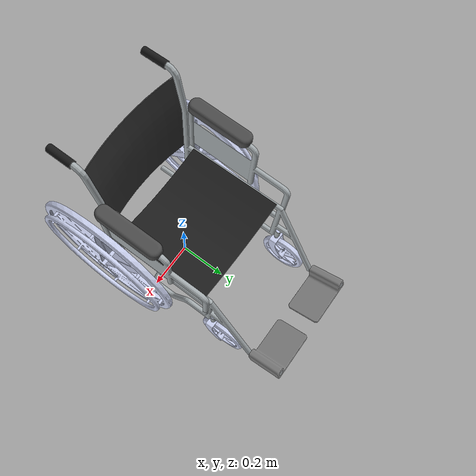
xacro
<?xml version="1.0"?>

<robot xmlns:xacro="http://www.ros.org/wiki/xacro" name="wheelchair">

  <xacro:property name="PI" value="3.14159265359" />
  <xacro:property name="largewheel_radius" value="0.3048" />
  <xacro:property name="largewheel_diameter" value="0.6096" />
  <xacro:property name="smallwheel_radius" value=".165" />
  <xacro:property name="smallwheel_diameter" value=".165" />
  <xacro:property name="distance_between_wheels" value="0.5588" />
  <xacro:property name="wheel_acceleration" value="1.8" />

  <link name="base_footprint">
    <visual>
      <origin xyz="0 0 0" rpy="0 0 0" />
        <geometry>
          <box size="0.001 0.001 0.001" />
        </geometry>
    </visual>
  </link>

  <joint name="base_footprint_joint" type="fixed">
    <origin xyz=" 0 0 0.2413" rpy="0 0 0"/>
    <parent link="base_footprint"/>
    <child link="base_link"/>
  </joint>
  <link
    name="base_link">
    <inertial>
      <origin
        xyz="-1.28082845038258E-05 0.101071625118331 -0.0727610834451831"
        rpy="0 0 0" />
      <mass
        value="2.91813448792695" />
      <inertia
        ixx="0.256407422045815"
        ixy="9.4092534200971E-07"
        ixz="-5.14055785103768E-06"
        iyy="0.264943521878258"
        iyz="0.0458755340734657"
        izz="0.241041719198046" />
    </inertial>
    <visual>
      <origin
        xyz="0 0 0"
        rpy="0 0 0" />
      <geometry>
        <mesh
          filename="package://nirajwheelchair/meshes/base_link.STL" />
      </geometry>
      <material
        name="">
        <color
          rgba="0.63921568627451 0.666666666666667 0.67843137254902 1" />
      </material>
    </visual>
    <collision>
      <origin
        xyz="0 0 0"
        rpy="0 0 0" />
      <geometry>
        <mesh
          filename="package://nirajwheelchair/meshes/base_link.STL" />
      </geometry>
    </collision>
  </link>
  <link
    name="leftwheel_large">
    <inertial>
      <origin
        xyz="0.00884272121955415 -1.52655665885959E-16 0"
        rpy="0 0 0" />
      <mass
        value="2.09127347260337" />
      <inertia
        ixx="0.141718020445608"
        ixy="-1.70129038814037E-18"
        ixz="4.38298979910474E-20"
        iyy="0.0715623057287749"
        iyz="-7.37535946286494E-20"
        izz="0.071562305728775" />
    </inertial>
    <visual>
      <origin
        xyz="0 0 0"
        rpy="0 0 0" />
      <geometry>
        <mesh
          filename="package://nirajwheelchair/meshes/leftwheel_large.STL" />
      </geometry>
      <material
        name="">
        <color
          rgba="0.796078431372549 0.823529411764706 0.937254901960784 1" />
      </material>
    </visual>
    <collision>
      <origin
        xyz="0 0 0"
        rpy="0 0 0" />
      <geometry>
        <mesh
          filename="package://nirajwheelchair/meshes/leftwheel_large.STL" />
      </geometry>
    </collision>
  </link>
  <joint
    name="leftwheel_large_joint"
    type="continuous">
    <origin
      xyz="-0.2794 -0.14129 0.0635"
      rpy="1.5708 0 3.1416" />
    <parent
      link="base_link" />
    <child
      link="leftwheel_large" />
    <axis
      xyz="1 0 0" />
  </joint>
  <link
    name="rightwheel_large">
    <inertial>
      <origin
        xyz="0.00884272121955421 5.55111512312578E-17 0"
        rpy="0 0 0" />
      <mass
        value="2.09127347260337" />
      <inertia
        ixx="0.141718020445608"
        ixy="-3.7003510904469E-18"
        ixz="1.20087974757339E-18"
        iyy="0.0715623057287749"
        iyz="5.59523873906816E-18"
        izz="0.071562305728775" />
    </inertial>
    <visual>
      <origin
        xyz="0 0 0"
        rpy="0 0 0" />
      <geometry>
        <mesh
          filename="package://nirajwheelchair/meshes/rightwheel_large.STL" />
      </geometry>
      <material
        name="">
        <color
          rgba="0.796078431372549 0.823529411764706 0.937254901960784 1" />
      </material>
    </visual>
    <collision>
      <origin
        xyz="0 0 0"
        rpy="0 0 0" />
      <geometry>
        <mesh
          filename="package://nirajwheelchair/meshes/rightwheel_large.STL" />
      </geometry>
    </collision>
  </link>
  <joint
    name="rightwheel_large_joint"
    type="continuous">
    <origin
      xyz="0.2794 -0.14129 0.0635"
      rpy="1.5708 0 0" />
    <parent
      link="base_link" />
    <child
      link="rightwheel_large" />
    <axis
      xyz="-1 0 0" />
  </joint>
  <link
    name="rightcaster">
    <inertial>
      <origin
        xyz="2.2944E-08 -0.079941 -0.0063847"
        rpy="0 0 0" />
      <mass
        value="0.064123" />
      <inertia
        ixx="0.0001406"
        ixy="2.3627E-11"
        ixz="-7.5709E-12"
        iyy="4.0905E-05"
        iyz="3.0634E-05"
        izz="0.00015091" />
    </inertial>
    <visual>
      <origin
        xyz="0 0 0"
        rpy="0 0 0" />
      <geometry>
        <mesh
          filename="package://nirajwheelchair/meshes/rightcaster.STL" />
      </geometry>
      <material
        name="">
        <color
          rgba="0.79216 0.81961 0.93333 1" />
      </material>
    </visual>
    <collision>
      <origin
        xyz="0 0 0"
        rpy="0 0 0" />
      <geometry>
        <mesh
          filename="package://nirajwheelchair/meshes/rightcaster.STL" />
      </geometry>
    </collision>
  </link>
  <joint
    name="rightcaster_joint"
    type="continuous">
    <origin
      xyz="0.2159 0.312737499999999 0.0253999999999996"
      rpy="1.5707963267949 0 0" />
    <parent
      link="base_link" />
    <child
      link="rightcaster" />
    <axis
      xyz="0 -1 0" />
  </joint>
  <link
    name="rightwheel_small">
    <inertial>
      <origin
        xyz="3.6892711108294E-13 2.77555756156289E-17 -5.55111512312578E-17"
        rpy="0 0 0" />
      <mass
        value="0.290948648858616" />
      <inertia
        ixx="0.00171792777524044"
        ixy="4.50037951992549E-20"
        ixz="-1.44756607081068E-21"
        iyy="0.000880037934920854"
        iyz="9.06796746511257E-20"
        izz="0.000880037934920855" />
    </inertial>
    <visual>
      <origin
        xyz="0 0 0"
        rpy="0 0 0" />
      <geometry>
        <mesh
          filename="package://nirajwheelchair/meshes/rightwheel_small.STL" />
      </geometry>
      <material
        name="">
        <color
          rgba="0.796078431372549 0.823529411764706 0.937254901960784 1" />
      </material>
    </visual>
    <collision>
      <origin
        xyz="0 0 0"
        rpy="0 0 0" />
      <geometry>
        <mesh
          filename="package://nirajwheelchair/meshes/rightwheel_small.STL" />
      </geometry>
    </collision>
  </link>
  <joint
    name="rightwheel_small_joint"
    type="continuous">
    <origin
      xyz="0 -0.17145 -0.0508"
      rpy="0 0 0" />
    <parent
      link="rightcaster" />
    <child
      link="rightwheel_small" />
    <axis
      xyz="-1 0 0" />
  </joint>
  <link
    name="leftcaster">
    <inertial>
      <origin
        xyz="2.2944E-08 -0.079941 -0.0063847"
        rpy="0 0 0" />
      <mass
        value="0.064123" />
      <inertia
        ixx="0.0001406"
        ixy="2.3627E-11"
        ixz="-7.5709E-12"
        iyy="4.0905E-05"
        iyz="3.0634E-05"
        izz="0.00015091" />
    </inertial>
    <visual>
      <origin
        xyz="0 0 0"
        rpy="0 0 0" />
      <geometry>
        <mesh
          filename="package://nirajwheelchair/meshes/leftcaster.STL" />
      </geometry>
      <material
        name="">
        <color
          rgba="0.79216 0.81961 0.93333 1" />
      </material>
    </visual>
    <collision>
      <origin
        xyz="0 0 0"
        rpy="0 0 0" />
      <geometry>
        <mesh
          filename="package://nirajwheelchair/meshes/leftcaster.STL" />
      </geometry>
    </collision>
  </link>
  <joint
    name="leftcaster_joint"
    type="continuous">
    <origin
      xyz="-0.2159 0.31274 0.0254"
      rpy="1.5708 0 0" />
    <parent
      link="base_link" />
    <child
      link="leftcaster" />
    <axis
      xyz="0 -1 0" />
  </joint>
  <link
    name="leftwheel_small">
    <inertial>
      <origin
        xyz="3.6892711108294E-13 2.77555756156289E-17 -5.55111512312578E-17"
        rpy="0 0 0" />
      <mass
        value="0.290948648858616" />
      <inertia
        ixx="0.00171792777524044"
        ixy="4.50037951992647E-20"
        ixz="-1.55096364737737E-21"
        iyy="0.000880037934920855"
        iyz="9.04728794979875E-20"
        izz="0.000880037934920855" />
    </inertial>
    <visual>
      <origin
        xyz="0 0 0"
        rpy="0 0 0" />
      <geometry>
        <mesh
          filename="package://nirajwheelchair/meshes/leftwheel_small.STL" />
      </geometry>
      <material
        name="">
        <color
          rgba="0.796078431372549 0.823529411764706 0.937254901960784 1" />
      </material>
    </visual>
    <collision>
      <origin
        xyz="0 0 0"
        rpy="0 0 0" />
      <geometry>
        <mesh
          filename="package://nirajwheelchair/meshes/leftwheel_small.STL" />
      </geometry>
    </collision>
  </link>
  <joint
    name="leftwheel_small_joint"
    type="continuous">
    <origin
      xyz="0 -0.17145 -0.0508"
      rpy="0 0 0" />
    <parent
      link="leftcaster" />
    <child
      link="leftwheel_small" />
    <axis
      xyz="1 0 0" />
  </joint>
  <link
    name="rightarm">
    <inertial>
      <origin
        xyz="1.18010281741077E-07 0.185166937072231 -0.199206461461145"
        rpy="0 0 0" />
      <mass
        value="0.471825089726768" />
      <inertia
        ixx="0.0155593318644731"
        ixy="1.84439011258916E-09"
        ixz="-3.43766589699374E-09"
        iyy="0.0117190838949384"
        iyz="0.00138642687496885"
        izz="0.00386697456778474" />
    </inertial>
    <visual>
      <origin
        xyz="0 0 0"
        rpy="0 0 0" />
      <geometry>
        <mesh
          filename="package://nirajwheelchair/meshes/rightarm.STL" />
      </geometry>
      <material
        name="">
        <color
          rgba="0.63921568627451 0.666666666666667 0.67843137254902 1" />
      </material>
    </visual>
    <collision>
      <origin
        xyz="0 0 0"
        rpy="0 0 0" />
      <geometry>
        <mesh
          filename="package://nirajwheelchair/meshes/rightarm.STL" />
      </geometry>
    </collision>
  </link>
  <joint
    name="rightarm_joint"
    type="fixed">
    <origin
      xyz="0.23813 -0.14129 0.1397"
      rpy="1.5708 0 0" />
    <parent
      link="base_link" />
    <child
      link="rightarm" />
    <axis
      xyz="0 0 0" />
  </joint>
  <link
    name="right_armrest">
    <inertial>
      <origin
        xyz="-2.42861286636753E-17 0.0157847733756278 -3.11620174109351E-12"
        rpy="0 0 0" />
      <mass
        value="0.408415585541636" />
      <inertia
        ixx="0.000135173991787839"
        ixy="5.02807841910249E-20"
        ixz="4.88453589208517E-14"
        iyy="0.00211830087648834"
        iyz="-9.09079579520897E-14"
        izz="0.00204476151647392" />
    </inertial>
    <visual>
      <origin
        xyz="0 0 0"
        rpy="0 0 0" />
      <geometry>
        <mesh
          filename="package://nirajwheelchair/meshes/right_armrest.STL" />
      </geometry>
      <material
        name="">
        <color
          rgba="0.294117647058824 0.294117647058824 0.294117647058824 1" />
      </material>
    </visual>
    <collision>
      <origin
        xyz="0 0 0"
        rpy="0 0 0" />
      <geometry>
        <mesh
          filename="package://nirajwheelchair/meshes/right_armrest.STL" />
      </geometry>
    </collision>
  </link>
  <joint
    name="right_armrest_joint"
    type="fixed">
    <origin
      xyz="0 0.31115 -0.12979"
      rpy="0 1.5708 0" />
    <parent
      link="rightarm" />
    <child
      link="right_armrest" />
    <axis
      xyz="0 0 0" />
  </joint>
  <link
    name="leftarm">
    <inertial>
      <origin
        xyz="1.18010281685565E-07 0.185166937072233 -0.199206461461144"
        rpy="0 0 0" />
      <mass
        value="0.471825089726767" />
      <inertia
        ixx="0.015559331864473"
        ixy="1.84439011362186E-09"
        ixz="-3.43766589311025E-09"
        iyy="0.0117190838949385"
        iyz="0.00138642687496879"
        izz="0.00386697456778471" />
    </inertial>
    <visual>
      <origin
        xyz="0 0 0"
        rpy="0 0 0" />
      <geometry>
        <mesh
          filename="package://nirajwheelchair/meshes/leftarm.STL" />
      </geometry>
      <material
        name="">
        <color
          rgba="0.63921568627451 0.666666666666667 0.67843137254902 1" />
      </material>
    </visual>
    <collision>
      <origin
        xyz="0 0 0"
        rpy="0 0 0" />
      <geometry>
        <mesh
          filename="package://nirajwheelchair/meshes/leftarm.STL" />
      </geometry>
    </collision>
  </link>
  <joint
    name="leftarm_joint"
    type="fixed">
    <origin
      xyz="-0.24692 -0.1412 0.1397"
      rpy="1.5708 -1.2478E-18 -0.02038" />
    <parent
      link="base_link" />
    <child
      link="leftarm" />
    <axis
      xyz="0 0 0" />
  </joint>
  <link
    name="left_armrest">
    <inertial>
      <origin
        xyz="1.52655665885959E-16 0.0157847733756278 -3.11620174109351E-12"
        rpy="0 0 0" />
      <mass
        value="0.408415585541636" />
      <inertia
        ixx="0.000135173991787839"
        ixy="-1.73218564538266E-17"
        ixz="4.88618841500382E-14"
        iyy="0.00211830087648834"
        iyz="-9.09079215940594E-14"
        izz="0.00204476151647392" />
    </inertial>
    <visual>
      <origin
        xyz="0 0 0"
        rpy="0 0 0" />
      <geometry>
        <mesh
          filename="package://nirajwheelchair/meshes/left_armrest.STL" />
      </geometry>
      <material
        name="">
        <color
          rgba="0.294117647058824 0.294117647058824 0.294117647058824 1" />
      </material>
    </visual>
    <collision>
      <origin
        xyz="0 0 0"
        rpy="0 0 0" />
      <geometry>
        <mesh
          filename="package://nirajwheelchair/meshes/left_armrest.STL" />
      </geometry>
    </collision>
  </link>
  <joint
    name="left_armrest_joint"
    type="fixed">
    <origin
      xyz="0 0.31115 0"
      rpy="0 1.5708 0" />
    <parent
      link="leftarm" />
    <child
      link="left_armrest" />
    <axis
      xyz="0 0 0" />
  </joint>
  <link
    name="footrest_right">
    <inertial>
      <origin
        xyz="-0.0236226570016088 0.0138345880544009 1.18350340638784E-09"
        rpy="0 0 0" />
      <mass
        value="0.501530967220647" />
      <inertia
        ixx="0.000903120970728862"
        ixy="-0.000220262508399431"
        ixz="-5.59521519754147E-11"
        iyy="0.00273494587361928"
        iyz="1.10352302924895E-11"
        izz="0.0020199225032826" />
    </inertial>
    <visual>
      <origin
        xyz="0 0 0"
        rpy="0 0 0" />
      <geometry>
        <mesh
          filename="package://nirajwheelchair/meshes/footrest_right.STL" />
      </geometry>
      <material
        name="">
        <color
          rgba="0.494117647058824 0.494117647058824 0.494117647058824 1" />
      </material>
    </visual>
    <collision>
      <origin
        xyz="0 0 0"
        rpy="0 0 0" />
      <geometry>
        <mesh
          filename="package://nirajwheelchair/meshes/footrest_right.STL" />
      </geometry>
    </collision>
  </link>
  <joint
    name="footrest_right_joint"
    type="fixed">
    <origin
      xyz="0.133349996040531 0.57997143308514 -0.131687141742198"
      rpy="1.22173047639603 -1.46483635954078E-07 3.14159265358979" />
    <parent
      link="base_link" />
    <child
      link="footrest_right" />
    <axis
      xyz="0 0 0" />
  </joint>
  <link
    name="footrest_left">
    <inertial>
      <origin
        xyz="-0.0236226546114514 0.0138345921356111 0"
        rpy="0 0 0" />
      <mass
        value="0.501530967220646" />
      <inertia
        ixx="0.000903121046837002"
        ixy="-0.000220262824877906"
        ixz="-1.02999206386123E-18"
        iyy="0.00273494579751114"
        iyz="-2.60208521396521E-18"
        izz="0.0020199225032826" />
    </inertial>
    <visual>
      <origin
        xyz="0 0 0"
        rpy="0 0 0" />
      <geometry>
        <mesh
          filename="package://nirajwheelchair/meshes/footrest_left.STL" />
      </geometry>
      <material
        name="">
        <color
          rgba="0.494117647058824 0.494117647058824 0.494117647058824 1" />
      </material>
    </visual>
    <collision>
      <origin
        xyz="0 0 0"
        rpy="0 0 0" />
      <geometry>
        <mesh
          filename="package://nirajwheelchair/meshes/footrest_left.STL" />
      </geometry>
    </collision>
  </link>
  <joint
    name="footrest_left_joint"
    type="fixed">
    <origin
      xyz="-0.13335 0.57997 -0.13169"
      rpy="1.9199 0 0" />
    <parent
      link="base_link" />
    <child
      link="footrest_left" />
    <axis
      xyz="0 0 0" />
  </joint>
  <link
    name="rightgrip">
    <inertial>
      <origin
        xyz="-2.77555756156289E-17 0 0.0456011551858931"
        rpy="0 0 0" />
      <mass
        value="0.0252443236384477" />
      <inertia
        ixx="2.24921786050753E-05"
        ixy="6.64838770530638E-38"
        ixz="-8.25558926882581E-22"
        iyy="2.24921786050753E-05"
        iyz="3.9158246270818E-34"
        izz="4.00656160389394E-06" />
    </inertial>
    <visual>
      <origin
        xyz="0 0 0"
        rpy="0 0 0" />
      <geometry>
        <mesh
          filename="package://nirajwheelchair/meshes/rightgrip.STL" />
      </geometry>
      <material
        name="">
        <color
          rgba="0.0980392156862745 0.0980392156862745 0.0980392156862745 1" />
      </material>
    </visual>
    <collision>
      <origin
        xyz="0 0 0"
        rpy="0 0 0" />
      <geometry>
        <mesh
          filename="package://nirajwheelchair/meshes/rightgrip.STL" />
      </geometry>
    </collision>
  </link>
  <joint
    name="rightgrip_joint"
    type="fixed">
    <origin
      xyz="0.2159 -0.300037500000001 0.6477"
      rpy="1.5707963267949 0 3.14159265358979" />
    <parent
      link="base_link" />
    <child
      link="rightgrip" />
    <axis
      xyz="0 0 0" />
  </joint>
  <link
    name="leftgrip">
    <inertial>
      <origin
        xyz="0 1.1102E-16 0.045601"
        rpy="0 0 0" />
      <mass
        value="0.025244" />
      <inertia
        ixx="2.2492E-05"
        ixy="5.8078E-38"
        ixz="8.7567E-22"
        iyy="2.2492E-05"
        iyz="3.6359E-34"
        izz="4.0066E-06" />
    </inertial>
    <visual>
      <origin
        xyz="0 0 0"
        rpy="0 0 0" />
      <geometry>
        <mesh
          filename="package://nirajwheelchair/meshes/leftgrip.STL" />
      </geometry>
      <material
        name="">
        <color
          rgba="0.098039 0.098039 0.098039 1" />
      </material>
    </visual>
    <collision>
      <origin
        xyz="0 0 0"
        rpy="0 0 0" />
      <geometry>
        <mesh
          filename="package://nirajwheelchair/meshes/leftgrip.STL" />
      </geometry>
    </collision>
  </link>
  <joint
    name="leftgrip_joint"
    type="fixed">
    <origin
      xyz="-0.2159 -0.300037500000001 0.6477"
      rpy="1.5707963267949 0 3.14159265358979" />
    <parent
      link="base_link" />
    <child
      link="leftgrip" />
    <axis
      xyz="0 0 0" />
  </joint>
  <link
    name="seat">
    <inertial>
      <origin
        xyz="2.8645E-16 0.0065933 0.1905"
        rpy="0 0 0" />
      <mass
        value="0.63387" />
      <inertia
        ixx="0.007705"
        ixy="2.2272E-17"
        ixz="1.3722E-18"
        iyy="0.01763"
        iyz="-1.2773E-19"
        izz="0.0099994" />
    </inertial>
    <visual>
      <origin
        xyz="0 0 0"
        rpy="0 0 0" />
      <geometry>
        <mesh
          filename="package://nirajwheelchair/meshes/seat.STL" />
      </geometry>
      <material
        name="">
        <color
          rgba="0.1098 0.1098 0.1098 1" />
      </material>
    </visual>
    <collision>
      <origin
        xyz="0 0 0"
        rpy="0 0 0" />
      <geometry>
        <mesh
          filename="package://nirajwheelchair/meshes/seat.STL" />
      </geometry>
    </collision>
  </link>
  <joint
    name="seat_joint"
    type="fixed">
    <origin
      xyz="-0.000758068437348654 0.272009848683766 0.205317756485755"
      rpy="1.5707963267949 0 0" />
    <parent
      link="base_link" />
    <child
      link="seat" />
    <axis
      xyz="0 0 0" />
  </joint>
  <link
    name="back">
    <inertial>
      <origin
        xyz="0.2159 -0.23366 -0.12406"
        rpy="0 0 0" />
      <mass
        value="0.8762" />
      <inertia
        ixx="0.064112"
        ixy="1.2796E-07"
        ixz="-3.0003E-11"
        iyy="0.079205"
        iyz="0.0035815"
        izz="0.14222" />
    </inertial>
    <visual>
      <origin
        xyz="0 0 0"
        rpy="0 0 0" />
      <geometry>
        <mesh
          filename="package://nirajwheelchair/meshes/back.STL" />
      </geometry>
      <material
        name="">
        <color
          rgba="0.2 0.2 0.2 1" />
      </material>
    </visual>
    <collision>
      <origin
        xyz="0 0 0"
        rpy="0 0 0" />
      <geometry>
        <mesh
          filename="package://nirajwheelchair/meshes/back.STL" />
      </geometry>
    </collision>
  </link>
  <joint
    name="back_joint"
    type="fixed">
    <origin
      xyz="-0.2159 -0.30004 0.6477"
      rpy="1.5708 0 0" />
    <parent
      link="base_link" />
    <child
      link="back" />
    <axis
      xyz="0 0 0" />
  </joint>

  <!-- Transmission is important to link the joints and the controller -->
  <transmission name="rightwheel_large_joint_trans">
    <type>transmission_interface/SimpleTransmission</type>
    <joint name="rightwheel_large_joint" >
      <hardwareInterface>EffortJointInterface</hardwareInterface>
    </joint>
    <actuator name="rightwheel_large_joint_motor">
      <mechanicalReduction>1</mechanicalReduction>
    </actuator>
  </transmission>

  <transmission name="leftwheel_large_joint_trans">
    <type>transmission_interface/SimpleTransmission</type>
    <joint name="leftwheel_large_joint" >
      <hardwareInterface>EffortJointInterface</hardwareInterface>
    </joint>
    <actuator name="leftwheel_large_joint_motor">
      <mechanicalReduction>1</mechanicalReduction>
    </actuator>
  </transmission>

</robot>
